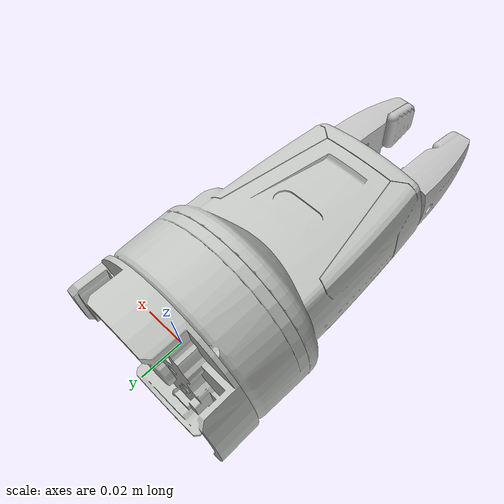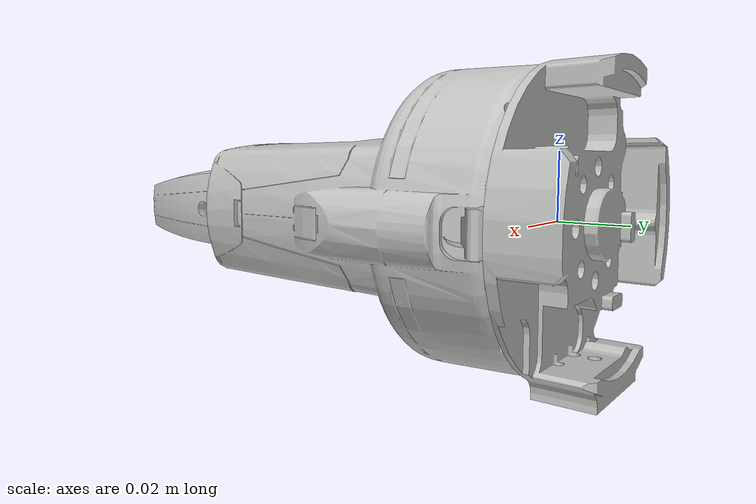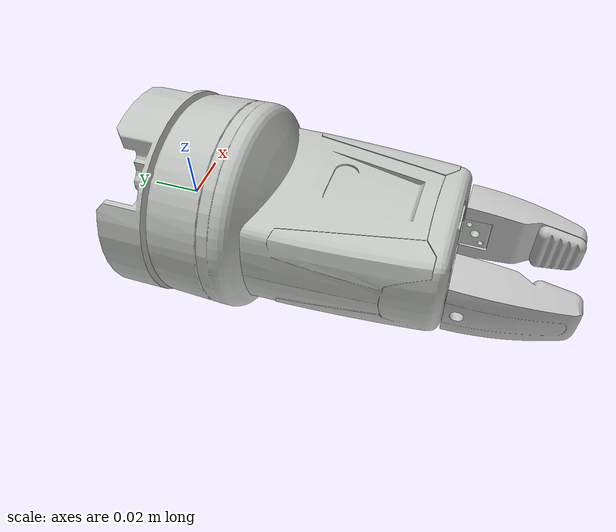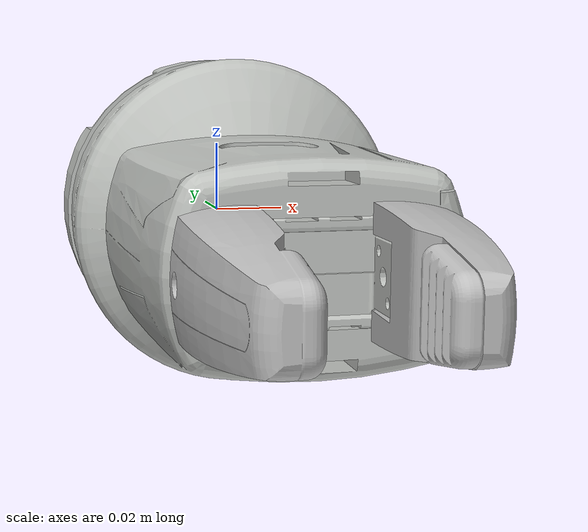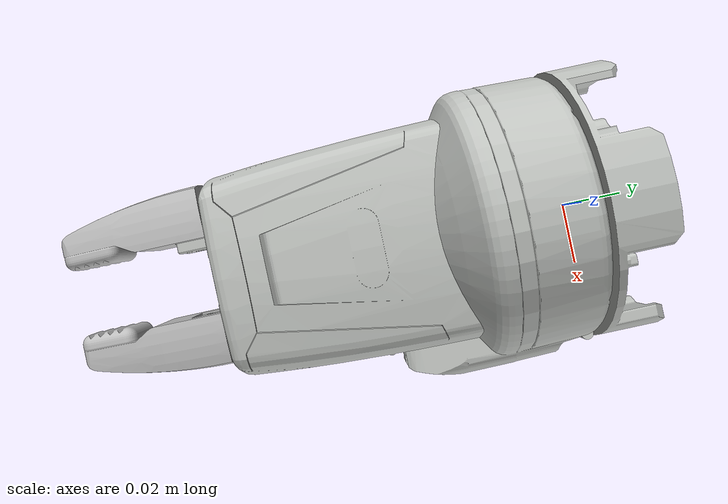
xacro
<?xml version="1.0" encoding="utf-8"?>
<robot
  name="Co-Act">
  <link name="base_coact_link">
    <inertial>
      <origin
        xyz="-0.0013084 -0.0011932 -0.0064058"
        rpy="0 0 0" />
      <mass
        value="0.050395" />
      <inertia
        ixx="3.0458E-05"
        ixy="2.8636E-07"
        ixz="-1.9145E-07"
        iyy="2.6439E-05"
        iyz="-9.0497E-08"
        izz="5.4519E-05" />
    </inertial>
    <visual>
      <origin
        xyz="0 0 0"
        rpy="0 0 0" />
      <geometry>
        <mesh
          filename="package://melfa_assista_hardware/meshes/base_coact_link.STL" />
      </geometry>
      <material
        name="">
        <color
          rgba="0.75686 0.76863 0.75294 1" />
      </material>
    </visual>
    <collision>
      <origin
        xyz="0 0 0"
        rpy="0 0 0" />
      <geometry>
        <mesh
          filename="package://melfa_assista_hardware/meshes/base_coact_link.STL" />
      </geometry>
    </collision>
  </link>
  <link
    name="flansch_link">
    <inertial>
      <origin
        xyz="4.8114E-05 4.8114E-05 -0.0046936"
        rpy="0 0 0" />
      <mass
        value="0.028627" />
      <inertia
        ixx="9.2813E-06"
        ixy="1.5667E-08"
        ixz="2.2814E-09"
        iyy="9.2813E-06"
        iyz="2.2814E-09"
        izz="1.8154E-05" />
    </inertial>
    <visual>
      <origin
        xyz="0 0 0"
        rpy="0 0 0" />
      <geometry>
        <mesh
          filename="package://melfa_assista_hardware/meshes/flansch_link.STL" />
      </geometry>
      <material
        name="">
        <color
          rgba="0.75686 0.76863 0.75294 1" />
      </material>
    </visual>
    <collision>
      <origin
        xyz="0 0 0"
        rpy="0 0 0" />
      <geometry>
        <mesh
          filename="package://melfa_assista_hardware/meshes/flansch_link.STL" />
      </geometry>
    </collision>
  </link>
  <joint
    name="joint_coact_1"
    type="fixed">
    <origin
      xyz="0 -0.0091 0"
      rpy="-1.5708 -0.7854 3.1416" />
    <parent
      link="base_coact_link" />
    <child
      link="flansch_link" />
    <axis
      xyz="0 0 0" />
  </joint>
  <link
    name="gehaeuse_link">
    <inertial>
      <origin
        xyz="0.0005658 -1.4838E-05 -0.077807"
        rpy="0 0 0" />
      <mass
        value="0.323" />
      <inertia
        ixx="0.00041011"
        ixy="5.6177E-08"
        ixz="-1.1974E-06"
        iyy="0.00045102"
        iyz="1.3574E-07"
        izz="0.00031315" />
    </inertial>
    <visual>
      <origin
        xyz="0 0 0"
        rpy="0 0 0" />
      <geometry>
        <mesh
          filename="package://melfa_assista_hardware/meshes/gehaeuse_link.STL" />
      </geometry>
      <material
        name="">
        <color
          rgba="0.75686 0.76863 0.75294 1" />
      </material>
    </visual>
    <collision>
      <origin
        xyz="0 0 0"
        rpy="0 0 0" />
      <geometry>
        <mesh
          filename="package://melfa_assista_hardware/meshes/gehaeuse_link.STL" />
      </geometry>
    </collision>
  </link>
  <joint
    name="joint_coact_2"
    type="fixed">
    <origin
      xyz="0 0 0.1089"
      rpy="0 0 -2.3562" />
    <parent
      link="flansch_link" />
    <child
      link="gehaeuse_link" />
    <axis
      xyz="0 0 0" />
  </joint>
  <link
    name="epg_link">
    <inertial>
      <origin
        xyz="-1.077E-05 0.039649 -6.2582E-06"
        rpy="0 0 0" />
      <mass
        value="0.078924" />
      <inertia
        ixx="4.5106E-05"
        ixy="-2.4411E-08"
        ixz="1.5006E-10"
        iyy="1.4707E-05"
        iyz="2.4187E-08"
        izz="5.0653E-05" />
    </inertial>
    <visual>
      <origin
        xyz="0 0 0"
        rpy="0 0 0" />
      <geometry>
        <mesh
          filename="package://melfa_assista_hardware/meshes/epg_link.STL" />
      </geometry>
      <material
        name="">
        <color
          rgba="0.75686 0.76863 0.75294 1" />
      </material>
    </visual>
    <collision>
      <origin
        xyz="0 0 0"
        rpy="0 0 0" />
      <geometry>
        <mesh
          filename="package://melfa_assista_hardware/meshes/epg_link.STL" />
      </geometry>
    </collision>
  </link>
  <joint
    name="joint_coact_3"
    type="fixed">
    <origin
      xyz="0 0 -0.0883"
      rpy="1.5708 0 0" />
    <parent
      link="gehaeuse_link" />
    <child
      link="epg_link" />
    <axis
      xyz="0 0 0" />
  </joint>
  <link
    name="fingerbasis_1_link">
    <inertial>
      <origin
        xyz="0.0041299 -0.014899 0.0033367"
        rpy="0 0 0" />
      <mass
        value="0.0033697" />
      <inertia
        ixx="2.0656E-07"
        ixy="-1.2393E-07"
        ixz="4.4099E-08"
        iyy="3.866E-07"
        iyz="4.1898E-08"
        izz="5.0604E-07" />
    </inertial>
    <visual>
      <origin
        xyz="0 0 0"
        rpy="0 0 0" />
      <geometry>
        <mesh
          filename="package://melfa_assista_hardware/meshes/fingerbasis_1_link.STL" />
      </geometry>
      <material
        name="">
        <color
          rgba="0.75686 0.76863 0.75294 1" />
      </material>
    </visual>
    <collision>
      <origin
        xyz="0 0 0"
        rpy="0 0 0" />
      <geometry>
        <mesh
          filename="package://melfa_assista_hardware/meshes/fingerbasis_1_link.STL" />
      </geometry>
    </collision>
  </link>
  <joint
    name="joint_coact_fingerb_1"
    type="prismatic">
    <origin
      xyz="0 0.10015 0"
      rpy="0 0 0" />
    <parent
      link="epg_link" />
    <child
      link="fingerbasis_1_link" />
    <axis
      xyz="1 0 0" />
    <limit
      lower="0"
      upper="0"
      effort="0"
      velocity="0" />
  </joint>
  <link
    name="finger_1_link">
    <inertial>
      <origin
        xyz="0.005521 0.024984 -0.0013035"
        rpy="0 0 0" />
      <mass
        value="0.016259" />
      <inertia
        ixx="3.2118E-06"
        ixy="9.0183E-08"
        ixz="1.7649E-11"
        iyy="1.1672E-06"
        iyz="-8.9973E-14"
        izz="2.581E-06" />
    </inertial>
    <visual>
      <origin
        xyz="0 0 0"
        rpy="0 0 0" />
      <geometry>
        <mesh
          filename="package://melfa_assista_hardware/meshes/finger_1_link.STL" />
      </geometry>
      <material
        name="">
        <color
          rgba="0.75294 0.75294 0.75294 1" />
      </material>
    </visual>
    <collision>
      <origin
        xyz="0 0 0"
        rpy="0 0 0" />
      <geometry>
        <mesh
          filename="package://melfa_assista_hardware/meshes/finger_1_link.STL" />
      </geometry>
    </collision>
  </link>
  <joint
    name="joint_coact_finger_1"
    type="fixed">
    <origin
      xyz="0.023769 0.035996 0.0020252"
      rpy="-0.017453 0 3.1416" />
    <parent
      link="fingerbasis_1_link" />
    <child
      link="finger_1_link" />
    <axis
      xyz="0 0 0" />
  </joint>
  <link
    name="fingerbasis_2_link">
    <inertial>
      <origin
        xyz="0.0211298784943377 -0.0148988514955782 0.0033366752274273"
        rpy="0 0 0" />
      <mass
        value="0.00336969440821799" />
      <inertia
        ixx="2.06558487217443E-07"
        ixy="-1.23928099412369E-07"
        ixz="4.4098671541406E-08"
        iyy="3.86603477559186E-07"
        iyz="4.18978494824805E-08"
        izz="5.06038543922911E-07" />
    </inertial>
    <visual>
      <origin
        xyz="0 0 0"
        rpy="0 0 0" />
      <geometry>
        <mesh
          filename="package://melfa_assista_hardware/meshes/fingerbasis_2_link.STL" />
      </geometry>
      <material
        name="">
        <color
          rgba="0.756862745098039 0.768627450980392 0.752941176470588 1" />
      </material>
    </visual>
    <collision>
      <origin
        xyz="0 0 0"
        rpy="0 0 0" />
      <geometry>
        <mesh
          filename="package://melfa_assista_hardware/meshes/fingerbasis_2_link.STL" />
      </geometry>
    </collision>
  </link>
  <joint
    name="joint_coact_fingerb_2"
    type="prismatic">
    <origin
      xyz="0.017 0.10015 0"
      rpy="3.1416 0 -3.1416" />
    <parent
      link="epg_link" />
    <child
      link="fingerbasis_2_link" />
    <axis
      xyz="1 0 0" />
    <limit
      lower="0"
      upper="0"
      effort="0"
      velocity="0" />
    <mimic
      joint="joint_coact_fingerb_1"
      multiplier="-1"
      offset="0" />
  </joint>
  <link
    name="finger_2_link">
    <inertial>
      <origin
        xyz="0.005521 0.024984 -0.0013035"
        rpy="0 0 0" />
      <mass
        value="0.016259" />
      <inertia
        ixx="3.2118E-06"
        ixy="9.0183E-08"
        ixz="1.6559E-11"
        iyy="1.1672E-06"
        iyz="-6.5147E-13"
        izz="2.581E-06" />
    </inertial>
    <visual>
      <origin
        xyz="0 0 0"
        rpy="0 0 0" />
      <geometry>
        <mesh
          filename="package://melfa_assista_hardware/meshes/finger_2_link.STL" />
      </geometry>
      <material
        name="">
        <color
          rgba="0.75294 0.75294 0.75294 1" />
      </material>
    </visual>
    <collision>
      <origin
        xyz="0 0 0"
        rpy="0 0 0" />
      <geometry>
        <mesh
          filename="package://melfa_assista_hardware/meshes/finger_2_link.STL" />
      </geometry>
    </collision>
  </link>
  <joint
    name="joint_coact_finger_2"
    type="fixed">
    <origin
      xyz="0.044769 0.036041 0.00055837"
      rpy="0.017453 0 3.1416" />
    <parent
      link="fingerbasis_2_link" />
    <child
      link="finger_2_link" />
    <axis
      xyz="0 0 0" />
  </joint>
</robot>
